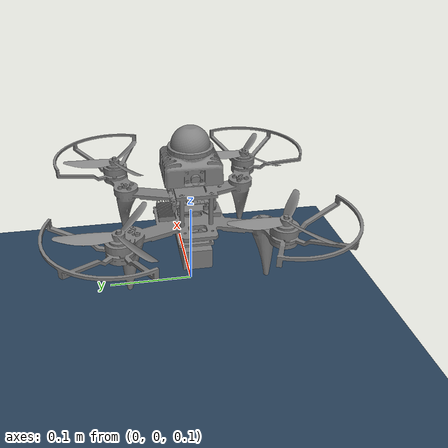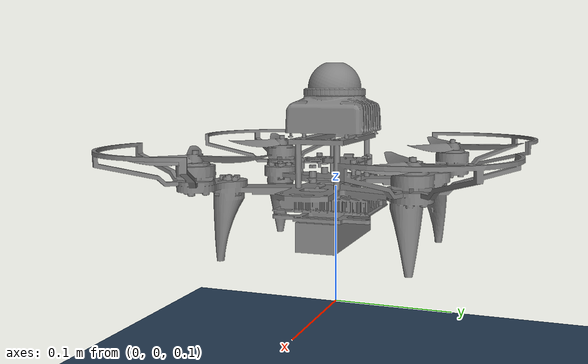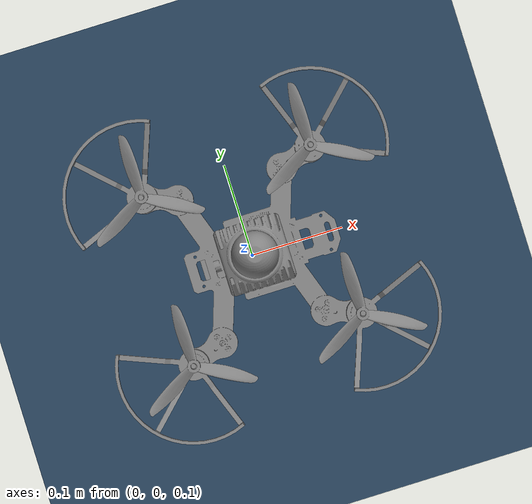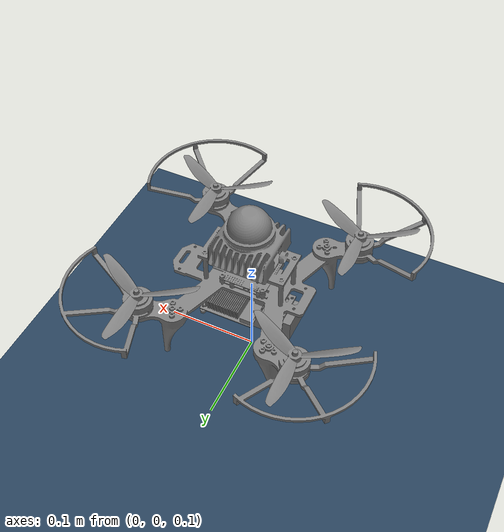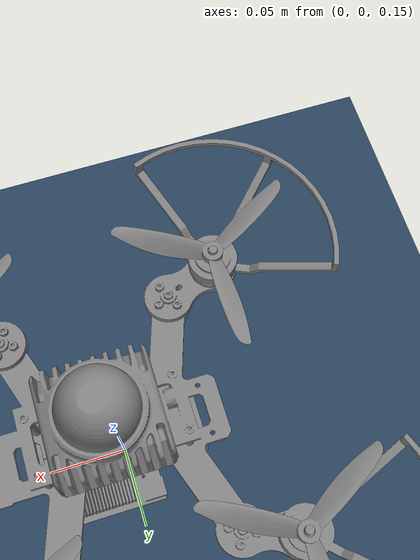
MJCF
<?xml version="1.0" ?>
<mujoco model="module_quadrotor">
  <compiler angle="radian" autolimits="true" balanceinertia="true"/>
  <statistic meansize="0.089511" extent="0.49757" center="0.00153028 0.000549881 0.017059"/>
  <asset>
    <mesh name="main_body_livox" file="main_body_livox.stl"/>
    <mesh name="turnigy_3S_2200mAh" file="turnigy_3S_2200mAh.stl"/>
    <mesh name="prop_5inch" file="prop_5inch.stl"/>
  </asset>
  <worldbody>
    <body name="main_body" pos="0 0 0.2">
      <inertial pos="0.002 0 0.026000000000000002" mass="0.832" fullinertia="0.0030 0.0030 0.0045 0 0 0"/>
      <freejoint/>
      <geom name="main_body" type="mesh" mesh="main_body_livox" contype="1" conaffinity="0"/>
      <geom name="battery" pos="0 0 -0.035" quat="0.707107 0.707107 0 0" type="mesh" mesh="turnigy_3S_2200mAh" contype="1" conaffinity="0"/>
      <body name="thrust1" pos="-0.085 -0.085 0.026">
        <inertial pos="0 0 0" quat="0.5 0.5 -0.5 0.5" mass="0.0091" diaginertia="1.612e-05 8.07e-06 8.07e-06"/>
        <geom name="thrust1" type="mesh" mesh="prop_5inch" contype="1" conaffinity="0"/>
        <site name="rotor1" pos="0 0 0"/>
      </body>
      <body name="thrust2" pos="0.085 -0.085 0.026">
        <inertial pos="0 0 0" quat="0.5 0.5 -0.5 0.5" mass="0.0091" diaginertia="1.612e-05 8.07e-06 8.07e-06"/>
        <geom name="thrust2" type="mesh" mesh="prop_5inch" contype="1" conaffinity="0"/>
        <site name="rotor2" pos="0 0 0"/>
      </body>
      <body name="thrust3" pos="0.085 0.085 0.026">
        <inertial pos="0 0 0" quat="0.5 0.5 -0.5 0.5" mass="0.0091" diaginertia="1.612e-05 8.07e-06 8.07e-06"/>
        <geom name="thrust3" type="mesh" mesh="prop_5inch" contype="1" conaffinity="0"/>
        <site name="rotor3" pos="0 0 0"/>
      </body>
      <body name="thrust4" pos="-0.085 0.085 0.026">
        <inertial pos="0 0 0" quat="0.5 0.5 -0.5 0.5" mass="0.0091" diaginertia="1.612e-05 8.07e-06 8.07e-06"/>
        <geom name="thrust4" type="mesh" mesh="prop_5inch" contype="1" conaffinity="0"/>
        <site name="rotor4" pos="0 0 0"/>
      </body>
      <site name="fc" pos="0 0 0"/>
      <body name="battery" pos="0 0 -0.035" quat="0.707107 0.707107 0 0">
        <inertial pos="0 0 0" mass="0.188" fullinertia="0.0002 0.0002 0.0002 0.0 0.0 0.0"/>
      </body>
    </body>
  </worldbody>
  <actuator>
    <motor name="rotor1" ctrllimited="true" ctrlrange="0 8" gear="0 0 1 0 0 0.011" site="rotor1"/>
    <motor name="rotor2" ctrllimited="true" ctrlrange="0 8" gear="0 0 1 0 0 -0.011" site="rotor2"/>
    <motor name="rotor3" ctrllimited="true" ctrlrange="0 8" gear="0 0 1 0 0 0.011" site="rotor3"/>
    <motor name="rotor4" ctrllimited="true" ctrlrange="0 8" gear="0 0 1 0 0 -0.011" site="rotor4"/>
  </actuator>
  <sensor>
    <accelerometer name="acc" site="fc"/>
    <gyro name="gyro" site="fc"/>
    <magnetometer name="mag" site="fc"/>
  </sensor>
  <include file="../../../../aerial_robot_3rdparty/mujoco_ros_control/config/world.xml"/>
</mujoco>

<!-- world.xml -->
<mujoco model="world">
  <compiler coordinate="local" convexhull="false" angle="radian"/>
  <option timestep="0.001" gravity="0 0 -9.81" collision="all"/>
  <option integrator="implicit" />

  <asset>
    <texture type="skybox" builtin="gradient" rgb1=".3 .5 .7" rgb2="0 0 0" width="32" height="512"/>
    <texture name="body" type="cube" builtin="flat" mark="cross" width="128" height="128" rgb1="0.8 0.6 0.4" rgb2="0.8 0.6 0.4" markrgb="1 1 1" random="0.01"/>
    <material name="body" texture="body" texuniform="true" rgba="0.8 0.6 .4 1"/>
    <texture name="grid" type="2d" builtin="checker" width="512" height="512" rgb1=".1 .2 .3" rgb2=".2 .3 .4"/>
    <material name="grid" texture="grid" texrepeat="1 1" texuniform="true" reflectance=".2"/>
  </asset>

  <worldbody>
    <light directional="true" diffuse=".8 .8 .8" pos="0 0 10" dir="0 0 -10"/>
    <geom name="floor" size="0 0 .05" type="plane" material="grid" condim="3"/>
  </worldbody>

</mujoco>
